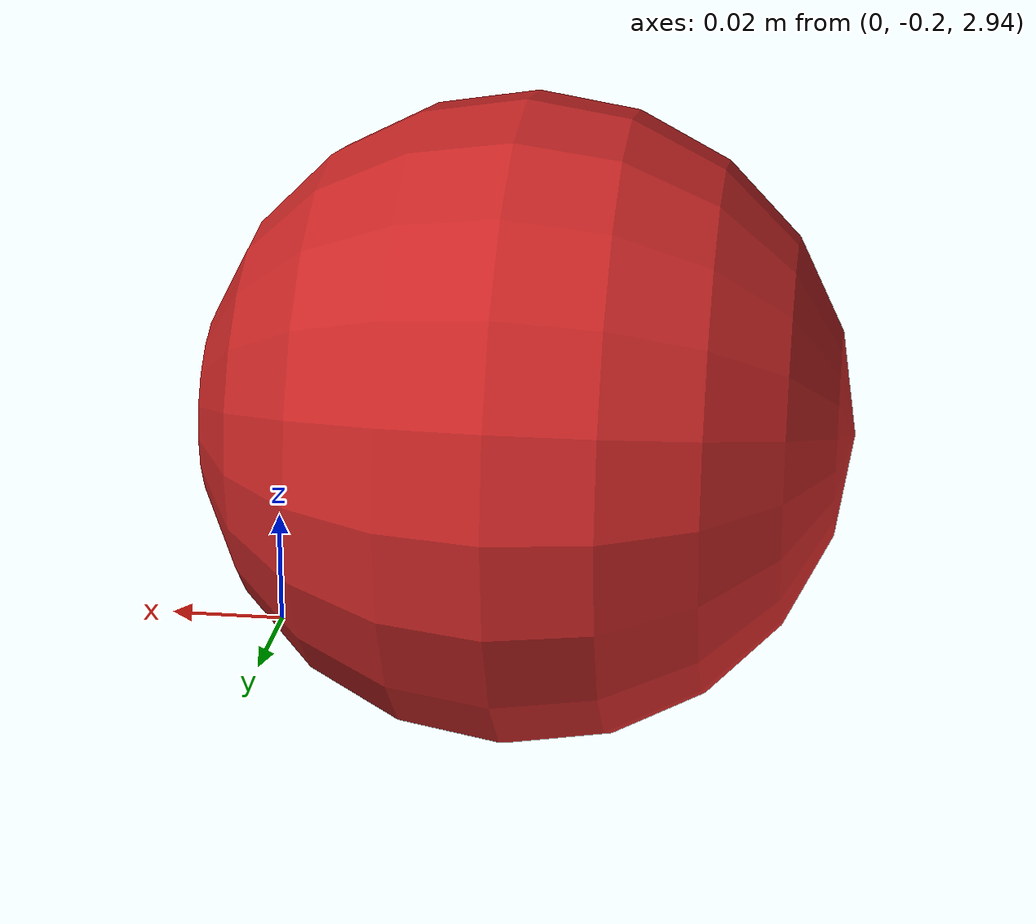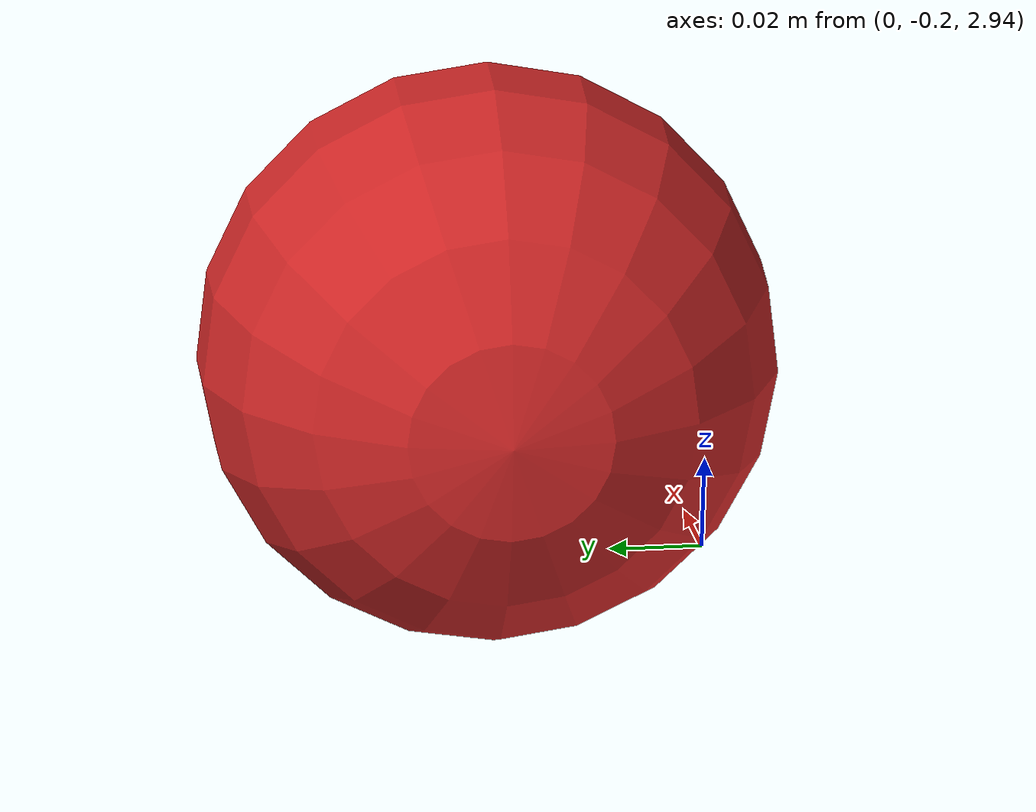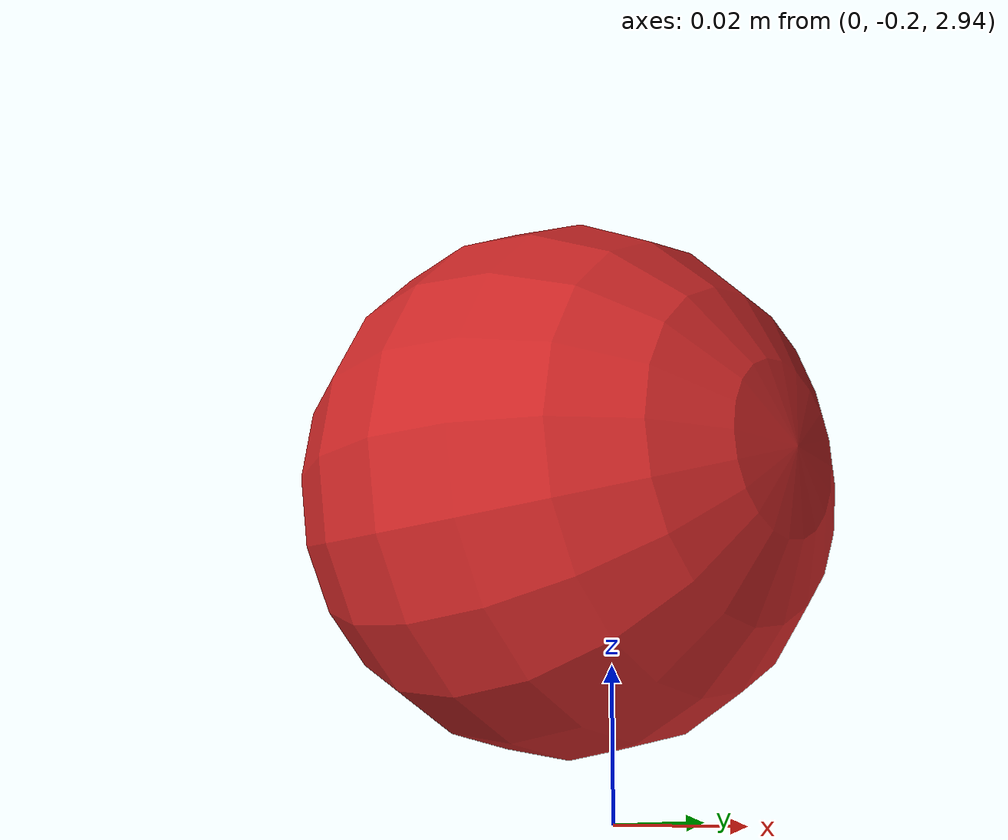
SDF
<?xml version="1.0" ?>
<sdf version="1.6">
  <model name="ball_red">
    <pose>0 0 3.0 0 0 0</pose>
    <static>true</static>
    <link name="link">
      <pose>0 0 0 1.57 0 1.57</pose>
      <visual name="visual">
          <pose>-0.15 0 -0.05 0 0 0</pose>
          <geometry>
            <sphere>
              <radius>.05</radius>
            </sphere>
          </geometry>
          <material>
            <script>
              <uri>file://media/materials/scripts/gazebo.material</uri>
              <name>Gazebo/Red</name>
            </script>
          </material>
      </visual>
    </link>
  </model>
</sdf>
